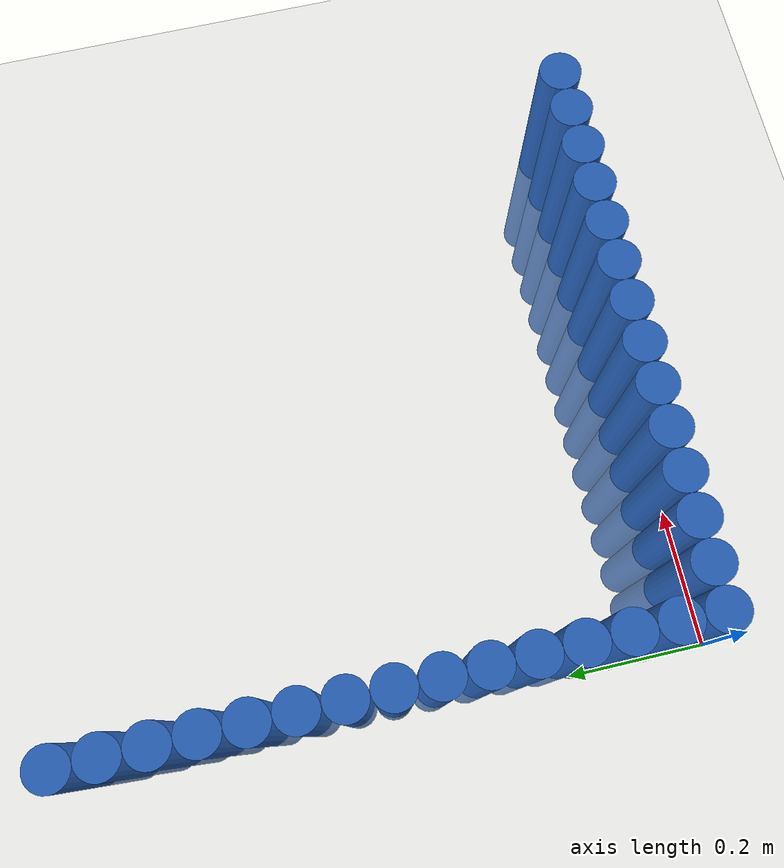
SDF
<sdf version="1.6">
 <world name="default">
  <model name="ground_plane">
   <static>1</static>
   <link name="link">
    <collision name="collision">
     <geometry><plane><normal>0 0 1</normal><size>100 100</size></plane></geometry>
     <surface><friction><ode><mu>100</mu><mu2>50</mu2></ode></friction></surface>
    </collision>
    <visual name="visual">
     <cast_shadows>0</cast_shadows>
     <geometry><plane><normal>0 0 1</normal><size>100 100</size></plane></geometry>
     <material>
      <script><uri>file://media/materials/scripts/gazebo.material</uri><name>Gazebo/Grey</name></script>
     </material>
    </visual>
   </link>
  </model>
  <model name="unit_cylinder_0">
   <static>1</static>
   <pose>0.030000 0.030000 0.000000 0.000000 0.000000 0.000000</pose>
   <link name="link">
    <inertial>
     <mass>1</mass>
     <inertia><ixx>0.145833</ixx><ixy>0</ixy><ixz>0</ixz><iyy>0.145833</iyy><iyz>0</iyz><izz>0.125</izz></inertia>
    </inertial>
    <collision name="collision">
     <geometry><cylinder><radius>0.030000</radius><length>0.5</length></cylinder></geometry>
    </collision>
    <visual name="visual">
     <geometry><cylinder><radius>0.030000</radius><length>0.5</length></cylinder></geometry>
     <material>
      <ambient>0.152000 0.379000 0.720000 1</ambient>
      <diffuse>0.152000 0.379000 0.720000 1</diffuse>
     </material>
     <material>
      <script><name>Gazebo/Grey</name><uri>file://media/materials/scripts/gazebo.material</uri></script>
     </material>
    </visual>
   </link>
  </model>
  <model name="unit_cylinder_1">
   <static>1</static>
   <pose>0.030000 0.090000 0.000000 0.000000 0.000000 0.000000</pose>
   <link name="link">
    <inertial>
     <mass>1</mass>
     <inertia><ixx>0.145833</ixx><ixy>0</ixy><ixz>0</ixz><iyy>0.145833</iyy><iyz>0</iyz><izz>0.125</izz></inertia>
    </inertial>
    <collision name="collision">
     <geometry><cylinder><radius>0.030000</radius><length>0.5</length></cylinder></geometry>
    </collision>
    <visual name="visual">
     <geometry><cylinder><radius>0.030000</radius><length>0.5</length></cylinder></geometry>
     <material>
      <ambient>0.152000 0.379000 0.720000 1</ambient>
      <diffuse>0.152000 0.379000 0.720000 1</diffuse>
     </material>
     <material>
      <script><name>Gazebo/Grey</name><uri>file://media/materials/scripts/gazebo.material</uri></script>
     </material>
    </visual>
   </link>
  </model>
  <model name="unit_cylinder_2">
   <static>1</static>
   <pose>0.030000 0.150000 0.000000 0.000000 0.000000 0.000000</pose>
   <link name="link">
    <inertial>
     <mass>1</mass>
     <inertia><ixx>0.145833</ixx><ixy>0</ixy><ixz>0</ixz><iyy>0.145833</iyy><iyz>0</iyz><izz>0.125</izz></inertia>
    </inertial>
    <collision name="collision">
     <geometry><cylinder><radius>0.030000</radius><length>0.5</length></cylinder></geometry>
    </collision>
    <visual name="visual">
     <geometry><cylinder><radius>0.030000</radius><length>0.5</length></cylinder></geometry>
     <material>
      <ambient>0.152000 0.379000 0.720000 1</ambient>
      <diffuse>0.152000 0.379000 0.720000 1</diffuse>
     </material>
     <material>
      <script><name>Gazebo/Grey</name><uri>file://media/materials/scripts/gazebo.material</uri></script>
     </material>
    </visual>
   </link>
  </model>
  <model name="unit_cylinder_3">
   <static>1</static>
   <pose>0.030000 0.210000 0.000000 0.000000 0.000000 0.000000</pose>
   <link name="link">
    <inertial>
     <mass>1</mass>
     <inertia><ixx>0.145833</ixx><ixy>0</ixy><ixz>0</ixz><iyy>0.145833</iyy><iyz>0</iyz><izz>0.125</izz></inertia>
    </inertial>
    <collision name="collision">
     <geometry><cylinder><radius>0.030000</radius><length>0.5</length></cylinder></geometry>
    </collision>
    <visual name="visual">
     <geometry><cylinder><radius>0.030000</radius><length>0.5</length></cylinder></geometry>
     <material>
      <ambient>0.152000 0.379000 0.720000 1</ambient>
      <diffuse>0.152000 0.379000 0.720000 1</diffuse>
     </material>
     <material>
      <script><name>Gazebo/Grey</name><uri>file://media/materials/scripts/gazebo.material</uri></script>
     </material>
    </visual>
   </link>
  </model>
  <model name="unit_cylinder_4">
   <static>1</static>
   <pose>0.030000 0.270000 0.000000 0.000000 0.000000 0.000000</pose>
   <link name="link">
    <inertial>
     <mass>1</mass>
     <inertia><ixx>0.145833</ixx><ixy>0</ixy><ixz>0</ixz><iyy>0.145833</iyy><iyz>0</iyz><izz>0.125</izz></inertia>
    </inertial>
    <collision name="collision">
     <geometry><cylinder><radius>0.030000</radius><length>0.5</length></cylinder></geometry>
    </collision>
    <visual name="visual">
     <geometry><cylinder><radius>0.030000</radius><length>0.5</length></cylinder></geometry>
     <material>
      <ambient>0.152000 0.379000 0.720000 1</ambient>
      <diffuse>0.152000 0.379000 0.720000 1</diffuse>
     </material>
     <material>
      <script><name>Gazebo/Grey</name><uri>file://media/materials/scripts/gazebo.material</uri></script>
     </material>
    </visual>
   </link>
  </model>
  <model name="unit_cylinder_5">
   <static>1</static>
   <pose>0.030000 0.330000 0.000000 0.000000 0.000000 0.000000</pose>
   <link name="link">
    <inertial>
     <mass>1</mass>
     <inertia><ixx>0.145833</ixx><ixy>0</ixy><ixz>0</ixz><iyy>0.145833</iyy><iyz>0</iyz><izz>0.125</izz></inertia>
    </inertial>
    <collision name="collision">
     <geometry><cylinder><radius>0.030000</radius><length>0.5</length></cylinder></geometry>
    </collision>
    <visual name="visual">
     <geometry><cylinder><radius>0.030000</radius><length>0.5</length></cylinder></geometry>
     <material>
      <ambient>0.152000 0.379000 0.720000 1</ambient>
      <diffuse>0.152000 0.379000 0.720000 1</diffuse>
     </material>
     <material>
      <script><name>Gazebo/Grey</name><uri>file://media/materials/scripts/gazebo.material</uri></script>
     </material>
    </visual>
   </link>
  </model>
  <model name="unit_cylinder_6">
   <static>1</static>
   <pose>0.030000 0.390000 0.000000 0.000000 0.000000 0.000000</pose>
   <link name="link">
    <inertial>
     <mass>1</mass>
     <inertia><ixx>0.145833</ixx><ixy>0</ixy><ixz>0</ixz><iyy>0.145833</iyy><iyz>0</iyz><izz>0.125</izz></inertia>
    </inertial>
    <collision name="collision">
     <geometry><cylinder><radius>0.030000</radius><length>0.5</length></cylinder></geometry>
    </collision>
    <visual name="visual">
     <geometry><cylinder><radius>0.030000</radius><length>0.5</length></cylinder></geometry>
     <material>
      <ambient>0.152000 0.379000 0.720000 1</ambient>
      <diffuse>0.152000 0.379000 0.720000 1</diffuse>
     </material>
     <material>
      <script><name>Gazebo/Grey</name><uri>file://media/materials/scripts/gazebo.material</uri></script>
     </material>
    </visual>
   </link>
  </model>
  <model name="unit_cylinder_7">
   <static>1</static>
   <pose>0.030000 0.450000 0.000000 0.000000 0.000000 0.000000</pose>
   <link name="link">
    <inertial>
     <mass>1</mass>
     <inertia><ixx>0.145833</ixx><ixy>0</ixy><ixz>0</ixz><iyy>0.145833</iyy><iyz>0</iyz><izz>0.125</izz></inertia>
    </inertial>
    <collision name="collision">
     <geometry><cylinder><radius>0.030000</radius><length>0.5</length></cylinder></geometry>
    </collision>
    <visual name="visual">
     <geometry><cylinder><radius>0.030000</radius><length>0.5</length></cylinder></geometry>
     <material>
      <ambient>0.152000 0.379000 0.720000 1</ambient>
      <diffuse>0.152000 0.379000 0.720000 1</diffuse>
     </material>
     <material>
      <script><name>Gazebo/Grey</name><uri>file://media/materials/scripts/gazebo.material</uri></script>
     </material>
    </visual>
   </link>
  </model>
  <model name="unit_cylinder_8">
   <static>1</static>
   <pose>0.030000 0.510000 0.000000 0.000000 0.000000 0.000000</pose>
   <link name="link">
    <inertial>
     <mass>1</mass>
     <inertia><ixx>0.145833</ixx><ixy>0</ixy><ixz>0</ixz><iyy>0.145833</iyy><iyz>0</iyz><izz>0.125</izz></inertia>
    </inertial>
    <collision name="collision">
     <geometry><cylinder><radius>0.030000</radius><length>0.5</length></cylinder></geometry>
    </collision>
    <visual name="visual">
     <geometry><cylinder><radius>0.030000</radius><length>0.5</length></cylinder></geometry>
     <material>
      <ambient>0.152000 0.379000 0.720000 1</ambient>
      <diffuse>0.152000 0.379000 0.720000 1</diffuse>
     </material>
     <material>
      <script><name>Gazebo/Grey</name><uri>file://media/materials/scripts/gazebo.material</uri></script>
     </material>
    </visual>
   </link>
  </model>
  <model name="unit_cylinder_9">
   <static>1</static>
   <pose>0.030000 0.570000 0.000000 0.000000 0.000000 0.000000</pose>
   <link name="link">
    <inertial>
     <mass>1</mass>
     <inertia><ixx>0.145833</ixx><ixy>0</ixy><ixz>0</ixz><iyy>0.145833</iyy><iyz>0</iyz><izz>0.125</izz></inertia>
    </inertial>
    <collision name="collision">
     <geometry><cylinder><radius>0.030000</radius><length>0.5</length></cylinder></geometry>
    </collision>
    <visual name="visual">
     <geometry><cylinder><radius>0.030000</radius><length>0.5</length></cylinder></geometry>
     <material>
      <ambient>0.152000 0.379000 0.720000 1</ambient>
      <diffuse>0.152000 0.379000 0.720000 1</diffuse>
     </material>
     <material>
      <script><name>Gazebo/Grey</name><uri>file://media/materials/scripts/gazebo.material</uri></script>
     </material>
    </visual>
   </link>
  </model>
  <model name="unit_cylinder_10">
   <static>1</static>
   <pose>0.030000 0.630000 0.000000 0.000000 0.000000 0.000000</pose>
   <link name="link">
    <inertial>
     <mass>1</mass>
     <inertia><ixx>0.145833</ixx><ixy>0</ixy><ixz>0</ixz><iyy>0.145833</iyy><iyz>0</iyz><izz>0.125</izz></inertia>
    </inertial>
    <collision name="collision">
     <geometry><cylinder><radius>0.030000</radius><length>0.5</length></cylinder></geometry>
    </collision>
    <visual name="visual">
     <geometry><cylinder><radius>0.030000</radius><length>0.5</length></cylinder></geometry>
     <material>
      <ambient>0.152000 0.379000 0.720000 1</ambient>
      <diffuse>0.152000 0.379000 0.720000 1</diffuse>
     </material>
     <material>
      <script><name>Gazebo/Grey</name><uri>file://media/materials/scripts/gazebo.material</uri></script>
     </material>
    </visual>
   </link>
  </model>
  <model name="unit_cylinder_11">
   <static>1</static>
   <pose>0.030000 0.690000 0.000000 0.000000 0.000000 0.000000</pose>
   <link name="link">
    <inertial>
     <mass>1</mass>
     <inertia><ixx>0.145833</ixx><ixy>0</ixy><ixz>0</ixz><iyy>0.145833</iyy><iyz>0</iyz><izz>0.125</izz></inertia>
    </inertial>
    <collision name="collision">
     <geometry><cylinder><radius>0.030000</radius><length>0.5</length></cylinder></geometry>
    </collision>
    <visual name="visual">
     <geometry><cylinder><radius>0.030000</radius><length>0.5</length></cylinder></geometry>
     <material>
      <ambient>0.152000 0.379000 0.720000 1</ambient>
      <diffuse>0.152000 0.379000 0.720000 1</diffuse>
     </material>
     <material>
      <script><name>Gazebo/Grey</name><uri>file://media/materials/scripts/gazebo.material</uri></script>
     </material>
    </visual>
   </link>
  </model>
  <model name="unit_cylinder_12">
   <static>1</static>
   <pose>0.030000 0.750000 0.000000 0.000000 0.000000 0.000000</pose>
   <link name="link">
    <inertial>
     <mass>1</mass>
     <inertia><ixx>0.145833</ixx><ixy>0</ixy><ixz>0</ixz><iyy>0.145833</iyy><iyz>0</iyz><izz>0.125</izz></inertia>
    </inertial>
    <collision name="collision">
     <geometry><cylinder><radius>0.030000</radius><length>0.5</length></cylinder></geometry>
    </collision>
    <visual name="visual">
     <geometry><cylinder><radius>0.030000</radius><length>0.5</length></cylinder></geometry>
     <material>
      <ambient>0.152000 0.379000 0.720000 1</ambient>
      <diffuse>0.152000 0.379000 0.720000 1</diffuse>
     </material>
     <material>
      <script><name>Gazebo/Grey</name><uri>file://media/materials/scripts/gazebo.material</uri></script>
     </material>
    </visual>
   </link>
  </model>
  <model name="unit_cylinder_13">
   <static>1</static>
   <pose>0.030000 0.810000 0.000000 0.000000 0.000000 0.000000</pose>
   <link name="link">
    <inertial>
     <mass>1</mass>
     <inertia><ixx>0.145833</ixx><ixy>0</ixy><ixz>0</ixz><iyy>0.145833</iyy><iyz>0</iyz><izz>0.125</izz></inertia>
    </inertial>
    <collision name="collision">
     <geometry><cylinder><radius>0.030000</radius><length>0.5</length></cylinder></geometry>
    </collision>
    <visual name="visual">
     <geometry><cylinder><radius>0.030000</radius><length>0.5</length></cylinder></geometry>
     <material>
      <ambient>0.152000 0.379000 0.720000 1</ambient>
      <diffuse>0.152000 0.379000 0.720000 1</diffuse>
     </material>
     <material>
      <script><name>Gazebo/Grey</name><uri>file://media/materials/scripts/gazebo.material</uri></script>
     </material>
    </visual>
   </link>
  </model>
  <model name="unit_cylinder_14">
   <static>1</static>
   <pose>0.030000 0.870000 0.000000 0.000000 0.000000 0.000000</pose>
   <link name="link">
    <inertial>
     <mass>1</mass>
     <inertia><ixx>0.145833</ixx><ixy>0</ixy><ixz>0</ixz><iyy>0.145833</iyy><iyz>0</iyz><izz>0.125</izz></inertia>
    </inertial>
    <collision name="collision">
     <geometry><cylinder><radius>0.030000</radius><length>0.5</length></cylinder></geometry>
    </collision>
    <visual name="visual">
     <geometry><cylinder><radius>0.030000</radius><length>0.5</length></cylinder></geometry>
     <material>
      <ambient>0.152000 0.379000 0.720000 1</ambient>
      <diffuse>0.152000 0.379000 0.720000 1</diffuse>
     </material>
     <material>
      <script><name>Gazebo/Grey</name><uri>file://media/materials/scripts/gazebo.material</uri></script>
     </material>
    </visual>
   </link>
  </model>
  <model name="unit_cylinder_29">
   <static>1</static>
   <pose>0.090000 0.030000 0.000000 0.000000 0.000000 0.000000</pose>
   <link name="link">
    <inertial>
     <mass>1</mass>
     <inertia><ixx>0.145833</ixx><ixy>0</ixy><ixz>0</ixz><iyy>0.145833</iyy><iyz>0</iyz><izz>0.125</izz></inertia>
    </inertial>
    <collision name="collision">
     <geometry><cylinder><radius>0.030000</radius><length>0.5</length></cylinder></geometry>
    </collision>
    <visual name="visual">
     <geometry><cylinder><radius>0.030000</radius><length>0.5</length></cylinder></geometry>
     <material>
      <ambient>0.152000 0.379000 0.720000 1</ambient>
      <diffuse>0.152000 0.379000 0.720000 1</diffuse>
     </material>
     <material>
      <script><name>Gazebo/Grey</name><uri>file://media/materials/scripts/gazebo.material</uri></script>
     </material>
    </visual>
   </link>
  </model>
  <model name="unit_cylinder_31">
   <static>1</static>
   <pose>0.150000 0.030000 0.000000 0.000000 0.000000 0.000000</pose>
   <link name="link">
    <inertial>
     <mass>1</mass>
     <inertia><ixx>0.145833</ixx><ixy>0</ixy><ixz>0</ixz><iyy>0.145833</iyy><iyz>0</iyz><izz>0.125</izz></inertia>
    </inertial>
    <collision name="collision">
     <geometry><cylinder><radius>0.030000</radius><length>0.5</length></cylinder></geometry>
    </collision>
    <visual name="visual">
     <geometry><cylinder><radius>0.030000</radius><length>0.5</length></cylinder></geometry>
     <material>
      <ambient>0.152000 0.379000 0.720000 1</ambient>
      <diffuse>0.152000 0.379000 0.720000 1</diffuse>
     </material>
     <material>
      <script><name>Gazebo/Grey</name><uri>file://media/materials/scripts/gazebo.material</uri></script>
     </material>
    </visual>
   </link>
  </model>
  <model name="unit_cylinder_33">
   <static>1</static>
   <pose>0.210000 0.030000 0.000000 0.000000 0.000000 0.000000</pose>
   <link name="link">
    <inertial>
     <mass>1</mass>
     <inertia><ixx>0.145833</ixx><ixy>0</ixy><ixz>0</ixz><iyy>0.145833</iyy><iyz>0</iyz><izz>0.125</izz></inertia>
    </inertial>
    <collision name="collision">
     <geometry><cylinder><radius>0.030000</radius><length>0.5</length></cylinder></geometry>
    </collision>
    <visual name="visual">
     <geometry><cylinder><radius>0.030000</radius><length>0.5</length></cylinder></geometry>
     <material>
      <ambient>0.152000 0.379000 0.720000 1</ambient>
      <diffuse>0.152000 0.379000 0.720000 1</diffuse>
     </material>
     <material>
      <script><name>Gazebo/Grey</name><uri>file://media/materials/scripts/gazebo.material</uri></script>
     </material>
    </visual>
   </link>
  </model>
  <model name="unit_cylinder_35">
   <static>1</static>
   <pose>0.270000 0.030000 0.000000 0.000000 0.000000 0.000000</pose>
   <link name="link">
    <inertial>
     <mass>1</mass>
     <inertia><ixx>0.145833</ixx><ixy>0</ixy><ixz>0</ixz><iyy>0.145833</iyy><iyz>0</iyz><izz>0.125</izz></inertia>
    </inertial>
    <collision name="collision">
     <geometry><cylinder><radius>0.030000</radius><length>0.5</length></cylinder></geometry>
    </collision>
    <visual name="visual">
     <geometry><cylinder><radius>0.030000</radius><length>0.5</length></cylinder></geometry>
     <material>
      <ambient>0.152000 0.379000 0.720000 1</ambient>
      <diffuse>0.152000 0.379000 0.720000 1</diffuse>
     </material>
     <material>
      <script><name>Gazebo/Grey</name><uri>file://media/materials/scripts/gazebo.material</uri></script>
     </material>
    </visual>
   </link>
  </model>
  <model name="unit_cylinder_37">
   <static>1</static>
   <pose>0.330000 0.030000 0.000000 0.000000 0.000000 0.000000</pose>
   <link name="link">
    <inertial>
     <mass>1</mass>
     <inertia><ixx>0.145833</ixx><ixy>0</ixy><ixz>0</ixz><iyy>0.145833</iyy><iyz>0</iyz><izz>0.125</izz></inertia>
    </inertial>
    <collision name="collision">
     <geometry><cylinder><radius>0.030000</radius><length>0.5</length></cylinder></geometry>
    </collision>
    <visual name="visual">
     <geometry><cylinder><radius>0.030000</radius><length>0.5</length></cylinder></geometry>
     <material>
      <ambient>0.152000 0.379000 0.720000 1</ambient>
      <diffuse>0.152000 0.379000 0.720000 1</diffuse>
     </material>
     <material>
      <script><name>Gazebo/Grey</name><uri>file://media/materials/scripts/gazebo.material</uri></script>
     </material>
    </visual>
   </link>
  </model>
  <model name="unit_cylinder_39">
   <static>1</static>
   <pose>0.390000 0.030000 0.000000 0.000000 0.000000 0.000000</pose>
   <link name="link">
    <inertial>
     <mass>1</mass>
     <inertia><ixx>0.145833</ixx><ixy>0</ixy><ixz>0</ixz><iyy>0.145833</iyy><iyz>0</iyz><izz>0.125</izz></inertia>
    </inertial>
    <collision name="collision">
     <geometry><cylinder><radius>0.030000</radius><length>0.5</length></cylinder></geometry>
    </collision>
    <visual name="visual">
     <geometry><cylinder><radius>0.030000</radius><length>0.5</length></cylinder></geometry>
     <material>
      <ambient>0.152000 0.379000 0.720000 1</ambient>
      <diffuse>0.152000 0.379000 0.720000 1</diffuse>
     </material>
     <material>
      <script><name>Gazebo/Grey</name><uri>file://media/materials/scripts/gazebo.material</uri></script>
     </material>
    </visual>
   </link>
  </model>
  <model name="unit_cylinder_41">
   <static>1</static>
   <pose>0.450000 0.030000 0.000000 0.000000 0.000000 0.000000</pose>
   <link name="link">
    <inertial>
     <mass>1</mass>
     <inertia><ixx>0.145833</ixx><ixy>0</ixy><ixz>0</ixz><iyy>0.145833</iyy><iyz>0</iyz><izz>0.125</izz></inertia>
    </inertial>
    <collision name="collision">
     <geometry><cylinder><radius>0.030000</radius><length>0.5</length></cylinder></geometry>
    </collision>
    <visual name="visual">
     <geometry><cylinder><radius>0.030000</radius><length>0.5</length></cylinder></geometry>
     <material>
      <ambient>0.152000 0.379000 0.720000 1</ambient>
      <diffuse>0.152000 0.379000 0.720000 1</diffuse>
     </material>
     <material>
      <script><name>Gazebo/Grey</name><uri>file://media/materials/scripts/gazebo.material</uri></script>
     </material>
    </visual>
   </link>
  </model>
  <model name="unit_cylinder_43">
   <static>1</static>
   <pose>0.510000 0.030000 0.000000 0.000000 0.000000 0.000000</pose>
   <link name="link">
    <inertial>
     <mass>1</mass>
     <inertia><ixx>0.145833</ixx><ixy>0</ixy><ixz>0</ixz><iyy>0.145833</iyy><iyz>0</iyz><izz>0.125</izz></inertia>
    </inertial>
    <collision name="collision">
     <geometry><cylinder><radius>0.030000</radius><length>0.5</length></cylinder></geometry>
    </collision>
    <visual name="visual">
     <geometry><cylinder><radius>0.030000</radius><length>0.5</length></cylinder></geometry>
     <material>
      <ambient>0.152000 0.379000 0.720000 1</ambient>
      <diffuse>0.152000 0.379000 0.720000 1</diffuse>
     </material>
     <material>
      <script><name>Gazebo/Grey</name><uri>file://media/materials/scripts/gazebo.material</uri></script>
     </material>
    </visual>
   </link>
  </model>
  <model name="unit_cylinder_45">
   <static>1</static>
   <pose>0.570000 0.030000 0.000000 0.000000 0.000000 0.000000</pose>
   <link name="link">
    <inertial>
     <mass>1</mass>
     <inertia><ixx>0.145833</ixx><ixy>0</ixy><ixz>0</ixz><iyy>0.145833</iyy><iyz>0</iyz><izz>0.125</izz></inertia>
    </inertial>
    <collision name="collision">
     <geometry><cylinder><radius>0.030000</radius><length>0.5</length></cylinder></geometry>
    </collision>
    <visual name="visual">
     <geometry><cylinder><radius>0.030000</radius><length>0.5</length></cylinder></geometry>
     <material>
      <ambient>0.152000 0.379000 0.720000 1</ambient>
      <diffuse>0.152000 0.379000 0.720000 1</diffuse>
     </material>
     <material>
      <script><name>Gazebo/Grey</name><uri>file://media/materials/scripts/gazebo.material</uri></script>
     </material>
    </visual>
   </link>
  </model>
  <model name="unit_cylinder_47">
   <static>1</static>
   <pose>0.630000 0.030000 0.000000 0.000000 0.000000 0.000000</pose>
   <link name="link">
    <inertial>
     <mass>1</mass>
     <inertia><ixx>0.145833</ixx><ixy>0</ixy><ixz>0</ixz><iyy>0.145833</iyy><iyz>0</iyz><izz>0.125</izz></inertia>
    </inertial>
    <collision name="collision">
     <geometry><cylinder><radius>0.030000</radius><length>0.5</length></cylinder></geometry>
    </collision>
    <visual name="visual">
     <geometry><cylinder><radius>0.030000</radius><length>0.5</length></cylinder></geometry>
     <material>
      <ambient>0.152000 0.379000 0.720000 1</ambient>
      <diffuse>0.152000 0.379000 0.720000 1</diffuse>
     </material>
     <material>
      <script><name>Gazebo/Grey</name><uri>file://media/materials/scripts/gazebo.material</uri></script>
     </material>
    </visual>
   </link>
  </model>
  <model name="unit_cylinder_49">
   <static>1</static>
   <pose>0.690000 0.030000 0.000000 0.000000 0.000000 0.000000</pose>
   <link name="link">
    <inertial>
     <mass>1</mass>
     <inertia><ixx>0.145833</ixx><ixy>0</ixy><ixz>0</ixz><iyy>0.145833</iyy><iyz>0</iyz><izz>0.125</izz></inertia>
    </inertial>
    <collision name="collision">
     <geometry><cylinder><radius>0.030000</radius><length>0.5</length></cylinder></geometry>
    </collision>
    <visual name="visual">
     <geometry><cylinder><radius>0.030000</radius><length>0.5</length></cylinder></geometry>
     <material>
      <ambient>0.152000 0.379000 0.720000 1</ambient>
      <diffuse>0.152000 0.379000 0.720000 1</diffuse>
     </material>
     <material>
      <script><name>Gazebo/Grey</name><uri>file://media/materials/scripts/gazebo.material</uri></script>
     </material>
    </visual>
   </link>
  </model>
  <model name="unit_cylinder_51">
   <static>1</static>
   <pose>0.750000 0.030000 0.000000 0.000000 0.000000 0.000000</pose>
   <link name="link">
    <inertial>
     <mass>1</mass>
     <inertia><ixx>0.145833</ixx><ixy>0</ixy><ixz>0</ixz><iyy>0.145833</iyy><iyz>0</iyz><izz>0.125</izz></inertia>
    </inertial>
    <collision name="collision">
     <geometry><cylinder><radius>0.030000</radius><length>0.5</length></cylinder></geometry>
    </collision>
    <visual name="visual">
     <geometry><cylinder><radius>0.030000</radius><length>0.5</length></cylinder></geometry>
     <material>
      <ambient>0.152000 0.379000 0.720000 1</ambient>
      <diffuse>0.152000 0.379000 0.720000 1</diffuse>
     </material>
     <material>
      <script><name>Gazebo/Grey</name><uri>file://media/materials/scripts/gazebo.material</uri></script>
     </material>
    </visual>
   </link>
  </model>
  <model name="unit_cylinder_53">
   <static>1</static>
   <pose>0.810000 0.030000 0.000000 0.000000 0.000000 0.000000</pose>
   <link name="link">
    <inertial>
     <mass>1</mass>
     <inertia><ixx>0.145833</ixx><ixy>0</ixy><ixz>0</ixz><iyy>0.145833</iyy><iyz>0</iyz><izz>0.125</izz></inertia>
    </inertial>
    <collision name="collision">
     <geometry><cylinder><radius>0.030000</radius><length>0.5</length></cylinder></geometry>
    </collision>
    <visual name="visual">
     <geometry><cylinder><radius>0.030000</radius><length>0.5</length></cylinder></geometry>
     <material>
      <ambient>0.152000 0.379000 0.720000 1</ambient>
      <diffuse>0.152000 0.379000 0.720000 1</diffuse>
     </material>
     <material>
      <script><name>Gazebo/Grey</name><uri>file://media/materials/scripts/gazebo.material</uri></script>
     </material>
    </visual>
   </link>
  </model>
 </world>
</sdf>
